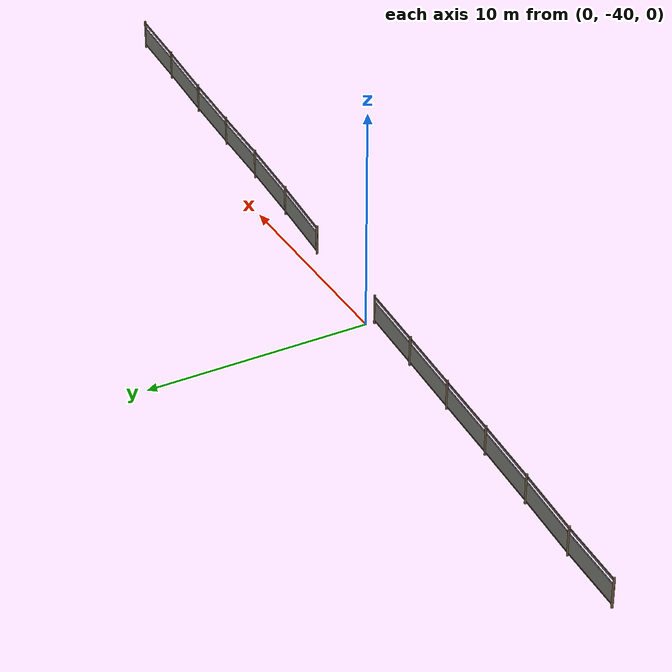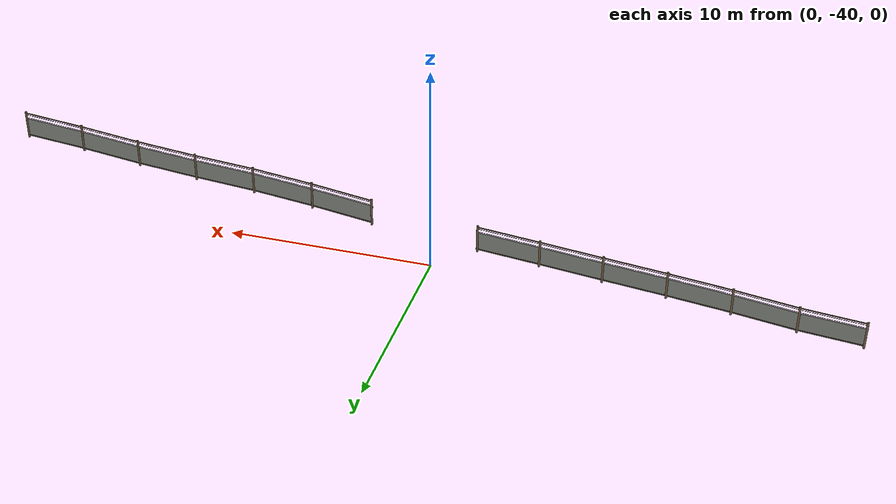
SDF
<sdf version="1.9">
 <world name="orchard_10x41">
  <model name="fence_S">
   <static>true</static>
   <link name="link">
    <visual name="post_1">
     <pose>-19.750 -39.000 0.785 0.0000 0.0000 0.0000</pose>
     <geometry><cylinder><radius>0.0500</radius><length>1.3500</length></cylinder></geometry>
     <material>
      <ambient>0.420 0.340 0.240 1</ambient>
      <diffuse>0.462 0.374 0.264 1</diffuse>
      <specular>0.126 0.102 0.072 1</specular>
     </material>
     <plugin filename="gz-sim-label-system" name="gz::sim::systems::Label"><label>60</label></plugin>
    </visual>
    <visual name="post_2">
     <pose>-16.875 -39.000 1.025 0.0000 0.0000 0.0000</pose>
     <geometry><cylinder><radius>0.0500</radius><length>1.3500</length></cylinder></geometry>
     <material>
      <ambient>0.420 0.340 0.240 1</ambient>
      <diffuse>0.462 0.374 0.264 1</diffuse>
      <specular>0.126 0.102 0.072 1</specular>
     </material>
     <plugin filename="gz-sim-label-system" name="gz::sim::systems::Label"><label>60</label></plugin>
    </visual>
    <visual name="post_3">
     <pose>-14.000 -39.000 1.392 0.0000 0.0000 0.0000</pose>
     <geometry><cylinder><radius>0.0500</radius><length>1.3500</length></cylinder></geometry>
     <material>
      <ambient>0.420 0.340 0.240 1</ambient>
      <diffuse>0.462 0.374 0.264 1</diffuse>
      <specular>0.126 0.102 0.072 1</specular>
     </material>
     <plugin filename="gz-sim-label-system" name="gz::sim::systems::Label"><label>60</label></plugin>
    </visual>
    <visual name="post_4">
     <pose>-11.125 -39.000 1.704 0.0000 0.0000 0.0000</pose>
     <geometry><cylinder><radius>0.0500</radius><length>1.3500</length></cylinder></geometry>
     <material>
      <ambient>0.420 0.340 0.240 1</ambient>
      <diffuse>0.462 0.374 0.264 1</diffuse>
      <specular>0.126 0.102 0.072 1</specular>
     </material>
     <plugin filename="gz-sim-label-system" name="gz::sim::systems::Label"><label>60</label></plugin>
    </visual>
    <visual name="post_5">
     <pose>-8.250 -39.000 1.985 0.0000 0.0000 0.0000</pose>
     <geometry><cylinder><radius>0.0500</radius><length>1.3500</length></cylinder></geometry>
     <material>
      <ambient>0.420 0.340 0.240 1</ambient>
      <diffuse>0.462 0.374 0.264 1</diffuse>
      <specular>0.126 0.102 0.072 1</specular>
     </material>
     <plugin filename="gz-sim-label-system" name="gz::sim::systems::Label"><label>60</label></plugin>
    </visual>
    <visual name="post_6">
     <pose>-5.375 -39.000 2.276 0.0000 0.0000 0.0000</pose>
     <geometry><cylinder><radius>0.0500</radius><length>1.3500</length></cylinder></geometry>
     <material>
      <ambient>0.420 0.340 0.240 1</ambient>
      <diffuse>0.462 0.374 0.264 1</diffuse>
      <specular>0.126 0.102 0.072 1</specular>
     </material>
     <plugin filename="gz-sim-label-system" name="gz::sim::systems::Label"><label>60</label></plugin>
    </visual>
    <visual name="post_7">
     <pose>-2.500 -39.000 2.552 0.0000 0.0000 0.0000</pose>
     <geometry><cylinder><radius>0.0500</radius><length>1.3500</length></cylinder></geometry>
     <material>
      <ambient>0.420 0.340 0.240 1</ambient>
      <diffuse>0.462 0.374 0.264 1</diffuse>
      <specular>0.126 0.102 0.072 1</specular>
     </material>
     <plugin filename="gz-sim-label-system" name="gz::sim::systems::Label"><label>60</label></plugin>
    </visual>
    <visual name="mesh_8">
     <pose>-18.312 -39.000 0.780 0.0000 -0.0836 0.0000</pose>
     <geometry><box><size>2.9325 0.0200 0.9000</size></box></geometry>
     <material>
      <ambient>0.460 0.470 0.440 1</ambient>
      <diffuse>0.506 0.517 0.484 1</diffuse>
      <specular>0.138 0.141 0.132 1</specular>
     </material>
     <plugin filename="gz-sim-label-system" name="gz::sim::systems::Label"><label>60</label></plugin>
    </visual>
    <visual name="rail_9">
     <pose>-18.312 -39.000 0.380 0.0000 -0.0836 0.0000</pose>
     <geometry><box><size>2.9325 0.0350 0.0350</size></box></geometry>
     <material>
      <ambient>0.380 0.310 0.220 1</ambient>
      <diffuse>0.418 0.341 0.242 1</diffuse>
      <specular>0.114 0.093 0.066 1</specular>
     </material>
     <plugin filename="gz-sim-label-system" name="gz::sim::systems::Label"><label>60</label></plugin>
    </visual>
    <visual name="rail_10">
     <pose>-18.312 -39.000 1.510 0.0000 -0.0836 0.0000</pose>
     <geometry><box><size>2.9325 0.0350 0.0350</size></box></geometry>
     <material>
      <ambient>0.380 0.310 0.220 1</ambient>
      <diffuse>0.418 0.341 0.242 1</diffuse>
      <specular>0.114 0.093 0.066 1</specular>
     </material>
     <plugin filename="gz-sim-label-system" name="gz::sim::systems::Label"><label>60</label></plugin>
    </visual>
    <visual name="wire_11">
     <pose>-18.312 -39.000 1.280 0.0000 -0.0836 0.0000</pose>
     <geometry><box><size>2.9325 0.0120 0.0120</size></box></geometry>
     <material>
      <ambient>0.300 0.300 0.320 1</ambient>
      <diffuse>0.330 0.330 0.352 1</diffuse>
      <specular>0.090 0.090 0.096 1</specular>
     </material>
     <plugin filename="gz-sim-label-system" name="gz::sim::systems::Label"><label>60</label></plugin>
    </visual>
    <visual name="wire_12">
     <pose>-18.312 -39.000 1.420 0.0000 -0.0836 0.0000</pose>
     <geometry><box><size>2.9325 0.0120 0.0120</size></box></geometry>
     <material>
      <ambient>0.300 0.300 0.320 1</ambient>
      <diffuse>0.330 0.330 0.352 1</diffuse>
      <specular>0.090 0.090 0.096 1</specular>
     </material>
     <plugin filename="gz-sim-label-system" name="gz::sim::systems::Label"><label>60</label></plugin>
    </visual>
    <visual name="mesh_13">
     <pose>-15.438 -39.000 1.084 0.0000 -0.1268 0.0000</pose>
     <geometry><box><size>2.9325 0.0200 0.9000</size></box></geometry>
     <material>
      <ambient>0.460 0.470 0.440 1</ambient>
      <diffuse>0.506 0.517 0.484 1</diffuse>
      <specular>0.138 0.141 0.132 1</specular>
     </material>
     <plugin filename="gz-sim-label-system" name="gz::sim::systems::Label"><label>60</label></plugin>
    </visual>
    <visual name="rail_14">
     <pose>-15.438 -39.000 0.684 0.0000 -0.1268 0.0000</pose>
     <geometry><box><size>2.9325 0.0350 0.0350</size></box></geometry>
     <material>
      <ambient>0.380 0.310 0.220 1</ambient>
      <diffuse>0.418 0.341 0.242 1</diffuse>
      <specular>0.114 0.093 0.066 1</specular>
     </material>
     <plugin filename="gz-sim-label-system" name="gz::sim::systems::Label"><label>60</label></plugin>
    </visual>
    <visual name="rail_15">
     <pose>-15.438 -39.000 1.814 0.0000 -0.1268 0.0000</pose>
     <geometry><box><size>2.9325 0.0350 0.0350</size></box></geometry>
     <material>
      <ambient>0.380 0.310 0.220 1</ambient>
      <diffuse>0.418 0.341 0.242 1</diffuse>
      <specular>0.114 0.093 0.066 1</specular>
     </material>
     <plugin filename="gz-sim-label-system" name="gz::sim::systems::Label"><label>60</label></plugin>
    </visual>
    <visual name="wire_16">
     <pose>-15.438 -39.000 1.584 0.0000 -0.1268 0.0000</pose>
     <geometry><box><size>2.9325 0.0120 0.0120</size></box></geometry>
     <material>
      <ambient>0.300 0.300 0.320 1</ambient>
      <diffuse>0.330 0.330 0.352 1</diffuse>
      <specular>0.090 0.090 0.096 1</specular>
     </material>
     <plugin filename="gz-sim-label-system" name="gz::sim::systems::Label"><label>60</label></plugin>
    </visual>
    <visual name="wire_17">
     <pose>-15.438 -39.000 1.724 0.0000 -0.1268 0.0000</pose>
     <geometry><box><size>2.9325 0.0120 0.0120</size></box></geometry>
     <material>
      <ambient>0.300 0.300 0.320 1</ambient>
      <diffuse>0.330 0.330 0.352 1</diffuse>
      <specular>0.090 0.090 0.096 1</specular>
     </material>
     <plugin filename="gz-sim-label-system" name="gz::sim::systems::Label"><label>60</label></plugin>
    </visual>
    <visual name="mesh_18">
     <pose>-12.562 -39.000 1.423 0.0000 -0.1083 0.0000</pose>
     <geometry><box><size>2.9325 0.0200 0.9000</size></box></geometry>
     <material>
      <ambient>0.460 0.470 0.440 1</ambient>
      <diffuse>0.506 0.517 0.484 1</diffuse>
      <specular>0.138 0.141 0.132 1</specular>
     </material>
     <plugin filename="gz-sim-label-system" name="gz::sim::systems::Label"><label>60</label></plugin>
    </visual>
    <visual name="rail_19">
     <pose>-12.562 -39.000 1.023 0.0000 -0.1083 0.0000</pose>
     <geometry><box><size>2.9325 0.0350 0.0350</size></box></geometry>
     <material>
      <ambient>0.380 0.310 0.220 1</ambient>
      <diffuse>0.418 0.341 0.242 1</diffuse>
      <specular>0.114 0.093 0.066 1</specular>
     </material>
     <plugin filename="gz-sim-label-system" name="gz::sim::systems::Label"><label>60</label></plugin>
    </visual>
    <visual name="rail_20">
     <pose>-12.562 -39.000 2.153 0.0000 -0.1083 0.0000</pose>
     <geometry><box><size>2.9325 0.0350 0.0350</size></box></geometry>
     <material>
      <ambient>0.380 0.310 0.220 1</ambient>
      <diffuse>0.418 0.341 0.242 1</diffuse>
      <specular>0.114 0.093 0.066 1</specular>
     </material>
     <plugin filename="gz-sim-label-system" name="gz::sim::systems::Label"><label>60</label></plugin>
    </visual>
    <visual name="wire_21">
     <pose>-12.562 -39.000 1.923 0.0000 -0.1083 0.0000</pose>
     <geometry><box><size>2.9325 0.0120 0.0120</size></box></geometry>
     <material>
      <ambient>0.300 0.300 0.320 1</ambient>
      <diffuse>0.330 0.330 0.352 1</diffuse>
      <specular>0.090 0.090 0.096 1</specular>
     </material>
     <plugin filename="gz-sim-label-system" name="gz::sim::systems::Label"><label>60</label></plugin>
    </visual>
    <visual name="wire_22">
     <pose>-12.562 -39.000 2.063 0.0000 -0.1083 0.0000</pose>
     <geometry><box><size>2.9325 0.0120 0.0120</size></box></geometry>
     <material>
      <ambient>0.300 0.300 0.320 1</ambient>
      <diffuse>0.330 0.330 0.352 1</diffuse>
      <specular>0.090 0.090 0.096 1</specular>
     </material>
     <plugin filename="gz-sim-label-system" name="gz::sim::systems::Label"><label>60</label></plugin>
    </visual>
    <visual name="mesh_23">
     <pose>-9.688 -39.000 1.720 0.0000 -0.0972 0.0000</pose>
     <geometry><box><size>2.9325 0.0200 0.9000</size></box></geometry>
     <material>
      <ambient>0.460 0.470 0.440 1</ambient>
      <diffuse>0.506 0.517 0.484 1</diffuse>
      <specular>0.138 0.141 0.132 1</specular>
     </material>
     <plugin filename="gz-sim-label-system" name="gz::sim::systems::Label"><label>60</label></plugin>
    </visual>
    <visual name="rail_24">
     <pose>-9.688 -39.000 1.320 0.0000 -0.0972 0.0000</pose>
     <geometry><box><size>2.9325 0.0350 0.0350</size></box></geometry>
     <material>
      <ambient>0.380 0.310 0.220 1</ambient>
      <diffuse>0.418 0.341 0.242 1</diffuse>
      <specular>0.114 0.093 0.066 1</specular>
     </material>
     <plugin filename="gz-sim-label-system" name="gz::sim::systems::Label"><label>60</label></plugin>
    </visual>
    <visual name="rail_25">
     <pose>-9.688 -39.000 2.450 0.0000 -0.0972 0.0000</pose>
     <geometry><box><size>2.9325 0.0350 0.0350</size></box></geometry>
     <material>
      <ambient>0.380 0.310 0.220 1</ambient>
      <diffuse>0.418 0.341 0.242 1</diffuse>
      <specular>0.114 0.093 0.066 1</specular>
     </material>
     <plugin filename="gz-sim-label-system" name="gz::sim::systems::Label"><label>60</label></plugin>
    </visual>
    <visual name="wire_26">
     <pose>-9.688 -39.000 2.220 0.0000 -0.0972 0.0000</pose>
     <geometry><box><size>2.9325 0.0120 0.0120</size></box></geometry>
     <material>
      <ambient>0.300 0.300 0.320 1</ambient>
      <diffuse>0.330 0.330 0.352 1</diffuse>
      <specular>0.090 0.090 0.096 1</specular>
     </material>
     <plugin filename="gz-sim-label-system" name="gz::sim::systems::Label"><label>60</label></plugin>
    </visual>
    <visual name="wire_27">
     <pose>-9.688 -39.000 2.360 0.0000 -0.0972 0.0000</pose>
     <geometry><box><size>2.9325 0.0120 0.0120</size></box></geometry>
     <material>
      <ambient>0.300 0.300 0.320 1</ambient>
      <diffuse>0.330 0.330 0.352 1</diffuse>
      <specular>0.090 0.090 0.096 1</specular>
     </material>
     <plugin filename="gz-sim-label-system" name="gz::sim::systems::Label"><label>60</label></plugin>
    </visual>
    <visual name="mesh_28">
     <pose>-6.812 -39.000 2.005 0.0000 -0.1009 0.0000</pose>
     <geometry><box><size>2.9325 0.0200 0.9000</size></box></geometry>
     <material>
      <ambient>0.460 0.470 0.440 1</ambient>
      <diffuse>0.506 0.517 0.484 1</diffuse>
      <specular>0.138 0.141 0.132 1</specular>
     </material>
     <plugin filename="gz-sim-label-system" name="gz::sim::systems::Label"><label>60</label></plugin>
    </visual>
    <visual name="rail_29">
     <pose>-6.812 -39.000 1.605 0.0000 -0.1009 0.0000</pose>
     <geometry><box><size>2.9325 0.0350 0.0350</size></box></geometry>
     <material>
      <ambient>0.380 0.310 0.220 1</ambient>
      <diffuse>0.418 0.341 0.242 1</diffuse>
      <specular>0.114 0.093 0.066 1</specular>
     </material>
     <plugin filename="gz-sim-label-system" name="gz::sim::systems::Label"><label>60</label></plugin>
    </visual>
    <visual name="rail_30">
     <pose>-6.812 -39.000 2.735 0.0000 -0.1009 0.0000</pose>
     <geometry><box><size>2.9325 0.0350 0.0350</size></box></geometry>
     <material>
      <ambient>0.380 0.310 0.220 1</ambient>
      <diffuse>0.418 0.341 0.242 1</diffuse>
      <specular>0.114 0.093 0.066 1</specular>
     </material>
     <plugin filename="gz-sim-label-system" name="gz::sim::systems::Label"><label>60</label></plugin>
    </visual>
    <visual name="wire_31">
     <pose>-6.812 -39.000 2.505 0.0000 -0.1009 0.0000</pose>
     <geometry><box><size>2.9325 0.0120 0.0120</size></box></geometry>
     <material>
      <ambient>0.300 0.300 0.320 1</ambient>
      <diffuse>0.330 0.330 0.352 1</diffuse>
      <specular>0.090 0.090 0.096 1</specular>
     </material>
     <plugin filename="gz-sim-label-system" name="gz::sim::systems::Label"><label>60</label></plugin>
    </visual>
    <visual name="wire_32">
     <pose>-6.812 -39.000 2.645 0.0000 -0.1009 0.0000</pose>
     <geometry><box><size>2.9325 0.0120 0.0120</size></box></geometry>
     <material>
      <ambient>0.300 0.300 0.320 1</ambient>
      <diffuse>0.330 0.330 0.352 1</diffuse>
      <specular>0.090 0.090 0.096 1</specular>
     </material>
     <plugin filename="gz-sim-label-system" name="gz::sim::systems::Label"><label>60</label></plugin>
    </visual>
    <visual name="mesh_33">
     <pose>-3.938 -39.000 2.289 0.0000 -0.0957 0.0000</pose>
     <geometry><box><size>2.9325 0.0200 0.9000</size></box></geometry>
     <material>
      <ambient>0.460 0.470 0.440 1</ambient>
      <diffuse>0.506 0.517 0.484 1</diffuse>
      <specular>0.138 0.141 0.132 1</specular>
     </material>
     <plugin filename="gz-sim-label-system" name="gz::sim::systems::Label"><label>60</label></plugin>
    </visual>
    <visual name="rail_34">
     <pose>-3.938 -39.000 1.889 0.0000 -0.0957 0.0000</pose>
     <geometry><box><size>2.9325 0.0350 0.0350</size></box></geometry>
     <material>
      <ambient>0.380 0.310 0.220 1</ambient>
      <diffuse>0.418 0.341 0.242 1</diffuse>
      <specular>0.114 0.093 0.066 1</specular>
     </material>
     <plugin filename="gz-sim-label-system" name="gz::sim::systems::Label"><label>60</label></plugin>
    </visual>
    <visual name="rail_35">
     <pose>-3.938 -39.000 3.019 0.0000 -0.0957 0.0000</pose>
     <geometry><box><size>2.9325 0.0350 0.0350</size></box></geometry>
     <material>
      <ambient>0.380 0.310 0.220 1</ambient>
      <diffuse>0.418 0.341 0.242 1</diffuse>
      <specular>0.114 0.093 0.066 1</specular>
     </material>
     <plugin filename="gz-sim-label-system" name="gz::sim::systems::Label"><label>60</label></plugin>
    </visual>
    <visual name="wire_36">
     <pose>-3.938 -39.000 2.789 0.0000 -0.0957 0.0000</pose>
     <geometry><box><size>2.9325 0.0120 0.0120</size></box></geometry>
     <material>
      <ambient>0.300 0.300 0.320 1</ambient>
      <diffuse>0.330 0.330 0.352 1</diffuse>
      <specular>0.090 0.090 0.096 1</specular>
     </material>
     <plugin filename="gz-sim-label-system" name="gz::sim::systems::Label"><label>60</label></plugin>
    </visual>
    <visual name="wire_37">
     <pose>-3.938 -39.000 2.929 0.0000 -0.0957 0.0000</pose>
     <geometry><box><size>2.9325 0.0120 0.0120</size></box></geometry>
     <material>
      <ambient>0.300 0.300 0.320 1</ambient>
      <diffuse>0.330 0.330 0.352 1</diffuse>
      <specular>0.090 0.090 0.096 1</specular>
     </material>
     <plugin filename="gz-sim-label-system" name="gz::sim::systems::Label"><label>60</label></plugin>
    </visual>
    <collision name="c0">
     <pose>-18.312 -39.000 0.905 0.0000 -0.0836 0.0000</pose>
     <geometry><box><size>2.8750 0.0600 1.3500</size></box></geometry>
    </collision>
    <collision name="c1">
     <pose>-15.438 -39.000 1.209 0.0000 -0.1268 0.0000</pose>
     <geometry><box><size>2.8750 0.0600 1.3500</size></box></geometry>
    </collision>
    <collision name="c2">
     <pose>-12.562 -39.000 1.548 0.0000 -0.1083 0.0000</pose>
     <geometry><box><size>2.8750 0.0600 1.3500</size></box></geometry>
    </collision>
    <collision name="c3">
     <pose>-9.688 -39.000 1.845 0.0000 -0.0972 0.0000</pose>
     <geometry><box><size>2.8750 0.0600 1.3500</size></box></geometry>
    </collision>
    <collision name="c4">
     <pose>-6.812 -39.000 2.130 0.0000 -0.1009 0.0000</pose>
     <geometry><box><size>2.8750 0.0600 1.3500</size></box></geometry>
    </collision>
    <collision name="c5">
     <pose>-3.938 -39.000 2.414 0.0000 -0.0957 0.0000</pose>
     <geometry><box><size>2.8750 0.0600 1.3500</size></box></geometry>
    </collision>
   </link>
  </model>
  <model name="fence_S2">
   <static>true</static>
   <link name="link">
    <visual name="post_1">
     <pose>2.500 -39.000 3.085 0.0000 0.0000 0.0000</pose>
     <geometry><cylinder><radius>0.0500</radius><length>1.3500</length></cylinder></geometry>
     <material>
      <ambient>0.420 0.340 0.240 1</ambient>
      <diffuse>0.462 0.374 0.264 1</diffuse>
      <specular>0.126 0.102 0.072 1</specular>
     </material>
     <plugin filename="gz-sim-label-system" name="gz::sim::systems::Label"><label>60</label></plugin>
    </visual>
    <visual name="post_2">
     <pose>5.375 -39.000 3.488 0.0000 0.0000 0.0000</pose>
     <geometry><cylinder><radius>0.0500</radius><length>1.3500</length></cylinder></geometry>
     <material>
      <ambient>0.420 0.340 0.240 1</ambient>
      <diffuse>0.462 0.374 0.264 1</diffuse>
      <specular>0.126 0.102 0.072 1</specular>
     </material>
     <plugin filename="gz-sim-label-system" name="gz::sim::systems::Label"><label>60</label></plugin>
    </visual>
    <visual name="post_3">
     <pose>8.250 -39.000 3.816 0.0000 0.0000 0.0000</pose>
     <geometry><cylinder><radius>0.0500</radius><length>1.3500</length></cylinder></geometry>
     <material>
      <ambient>0.420 0.340 0.240 1</ambient>
      <diffuse>0.462 0.374 0.264 1</diffuse>
      <specular>0.126 0.102 0.072 1</specular>
     </material>
     <plugin filename="gz-sim-label-system" name="gz::sim::systems::Label"><label>60</label></plugin>
    </visual>
    <visual name="post_4">
     <pose>11.125 -39.000 4.047 0.0000 0.0000 0.0000</pose>
     <geometry><cylinder><radius>0.0500</radius><length>1.3500</length></cylinder></geometry>
     <material>
      <ambient>0.420 0.340 0.240 1</ambient>
      <diffuse>0.462 0.374 0.264 1</diffuse>
      <specular>0.126 0.102 0.072 1</specular>
     </material>
     <plugin filename="gz-sim-label-system" name="gz::sim::systems::Label"><label>60</label></plugin>
    </visual>
    <visual name="post_5">
     <pose>14.000 -39.000 4.327 0.0000 0.0000 0.0000</pose>
     <geometry><cylinder><radius>0.0500</radius><length>1.3500</length></cylinder></geometry>
     <material>
      <ambient>0.420 0.340 0.240 1</ambient>
      <diffuse>0.462 0.374 0.264 1</diffuse>
      <specular>0.126 0.102 0.072 1</specular>
     </material>
     <plugin filename="gz-sim-label-system" name="gz::sim::systems::Label"><label>60</label></plugin>
    </visual>
    <visual name="post_6">
     <pose>16.875 -39.000 4.683 0.0000 0.0000 0.0000</pose>
     <geometry><cylinder><radius>0.0500</radius><length>1.3500</length></cylinder></geometry>
     <material>
      <ambient>0.420 0.340 0.240 1</ambient>
      <diffuse>0.462 0.374 0.264 1</diffuse>
      <specular>0.126 0.102 0.072 1</specular>
     </material>
     <plugin filename="gz-sim-label-system" name="gz::sim::systems::Label"><label>60</label></plugin>
    </visual>
    <visual name="post_7">
     <pose>19.750 -39.000 4.973 0.0000 0.0000 0.0000</pose>
     <geometry><cylinder><radius>0.0500</radius><length>1.3500</length></cylinder></geometry>
     <material>
      <ambient>0.420 0.340 0.240 1</ambient>
      <diffuse>0.462 0.374 0.264 1</diffuse>
      <specular>0.126 0.102 0.072 1</specular>
     </material>
     <plugin filename="gz-sim-label-system" name="gz::sim::systems::Label"><label>60</label></plugin>
    </visual>
    <visual name="mesh_8">
     <pose>3.938 -39.000 3.162 0.0000 -0.1393 0.0000</pose>
     <geometry><box><size>2.9325 0.0200 0.9000</size></box></geometry>
     <material>
      <ambient>0.460 0.470 0.440 1</ambient>
      <diffuse>0.506 0.517 0.484 1</diffuse>
      <specular>0.138 0.141 0.132 1</specular>
     </material>
     <plugin filename="gz-sim-label-system" name="gz::sim::systems::Label"><label>60</label></plugin>
    </visual>
    <visual name="rail_9">
     <pose>3.938 -39.000 2.762 0.0000 -0.1393 0.0000</pose>
     <geometry><box><size>2.9325 0.0350 0.0350</size></box></geometry>
     <material>
      <ambient>0.380 0.310 0.220 1</ambient>
      <diffuse>0.418 0.341 0.242 1</diffuse>
      <specular>0.114 0.093 0.066 1</specular>
     </material>
     <plugin filename="gz-sim-label-system" name="gz::sim::systems::Label"><label>60</label></plugin>
    </visual>
    <visual name="rail_10">
     <pose>3.938 -39.000 3.892 0.0000 -0.1393 0.0000</pose>
     <geometry><box><size>2.9325 0.0350 0.0350</size></box></geometry>
     <material>
      <ambient>0.380 0.310 0.220 1</ambient>
      <diffuse>0.418 0.341 0.242 1</diffuse>
      <specular>0.114 0.093 0.066 1</specular>
     </material>
     <plugin filename="gz-sim-label-system" name="gz::sim::systems::Label"><label>60</label></plugin>
    </visual>
    <visual name="wire_11">
     <pose>3.938 -39.000 3.662 0.0000 -0.1393 0.0000</pose>
     <geometry><box><size>2.9325 0.0120 0.0120</size></box></geometry>
     <material>
      <ambient>0.300 0.300 0.320 1</ambient>
      <diffuse>0.330 0.330 0.352 1</diffuse>
      <specular>0.090 0.090 0.096 1</specular>
     </material>
     <plugin filename="gz-sim-label-system" name="gz::sim::systems::Label"><label>60</label></plugin>
    </visual>
    <visual name="wire_12">
     <pose>3.938 -39.000 3.802 0.0000 -0.1393 0.0000</pose>
     <geometry><box><size>2.9325 0.0120 0.0120</size></box></geometry>
     <material>
      <ambient>0.300 0.300 0.320 1</ambient>
      <diffuse>0.330 0.330 0.352 1</diffuse>
      <specular>0.090 0.090 0.096 1</specular>
     </material>
     <plugin filename="gz-sim-label-system" name="gz::sim::systems::Label"><label>60</label></plugin>
    </visual>
    <visual name="mesh_13">
     <pose>6.812 -39.000 3.527 0.0000 -0.1134 0.0000</pose>
     <geometry><box><size>2.9325 0.0200 0.9000</size></box></geometry>
     <material>
      <ambient>0.460 0.470 0.440 1</ambient>
      <diffuse>0.506 0.517 0.484 1</diffuse>
      <specular>0.138 0.141 0.132 1</specular>
     </material>
     <plugin filename="gz-sim-label-system" name="gz::sim::systems::Label"><label>60</label></plugin>
    </visual>
    <visual name="rail_14">
     <pose>6.812 -39.000 3.127 0.0000 -0.1134 0.0000</pose>
     <geometry><box><size>2.9325 0.0350 0.0350</size></box></geometry>
     <material>
      <ambient>0.380 0.310 0.220 1</ambient>
      <diffuse>0.418 0.341 0.242 1</diffuse>
      <specular>0.114 0.093 0.066 1</specular>
     </material>
     <plugin filename="gz-sim-label-system" name="gz::sim::systems::Label"><label>60</label></plugin>
    </visual>
    <visual name="rail_15">
     <pose>6.812 -39.000 4.257 0.0000 -0.1134 0.0000</pose>
     <geometry><box><size>2.9325 0.0350 0.0350</size></box></geometry>
     <material>
      <ambient>0.380 0.310 0.220 1</ambient>
      <diffuse>0.418 0.341 0.242 1</diffuse>
      <specular>0.114 0.093 0.066 1</specular>
     </material>
     <plugin filename="gz-sim-label-system" name="gz::sim::systems::Label"><label>60</label></plugin>
    </visual>
    <visual name="wire_16">
     <pose>6.812 -39.000 4.027 0.0000 -0.1134 0.0000</pose>
     <geometry><box><size>2.9325 0.0120 0.0120</size></box></geometry>
     <material>
      <ambient>0.300 0.300 0.320 1</ambient>
      <diffuse>0.330 0.330 0.352 1</diffuse>
      <specular>0.090 0.090 0.096 1</specular>
     </material>
     <plugin filename="gz-sim-label-system" name="gz::sim::systems::Label"><label>60</label></plugin>
    </visual>
    <visual name="wire_17">
     <pose>6.812 -39.000 4.167 0.0000 -0.1134 0.0000</pose>
     <geometry><box><size>2.9325 0.0120 0.0120</size></box></geometry>
     <material>
      <ambient>0.300 0.300 0.320 1</ambient>
      <diffuse>0.330 0.330 0.352 1</diffuse>
      <specular>0.090 0.090 0.096 1</specular>
     </material>
     <plugin filename="gz-sim-label-system" name="gz::sim::systems::Label"><label>60</label></plugin>
    </visual>
    <visual name="mesh_18">
     <pose>9.688 -39.000 3.807 0.0000 -0.0804 0.0000</pose>
     <geometry><box><size>2.9325 0.0200 0.9000</size></box></geometry>
     <material>
      <ambient>0.460 0.470 0.440 1</ambient>
      <diffuse>0.506 0.517 0.484 1</diffuse>
      <specular>0.138 0.141 0.132 1</specular>
     </material>
     <plugin filename="gz-sim-label-system" name="gz::sim::systems::Label"><label>60</label></plugin>
    </visual>
    <visual name="rail_19">
     <pose>9.688 -39.000 3.407 0.0000 -0.0804 0.0000</pose>
     <geometry><box><size>2.9325 0.0350 0.0350</size></box></geometry>
     <material>
      <ambient>0.380 0.310 0.220 1</ambient>
      <diffuse>0.418 0.341 0.242 1</diffuse>
      <specular>0.114 0.093 0.066 1</specular>
     </material>
     <plugin filename="gz-sim-label-system" name="gz::sim::systems::Label"><label>60</label></plugin>
    </visual>
    <visual name="rail_20">
     <pose>9.688 -39.000 4.537 0.0000 -0.0804 0.0000</pose>
     <geometry><box><size>2.9325 0.0350 0.0350</size></box></geometry>
     <material>
      <ambient>0.380 0.310 0.220 1</ambient>
      <diffuse>0.418 0.341 0.242 1</diffuse>
      <specular>0.114 0.093 0.066 1</specular>
     </material>
     <plugin filename="gz-sim-label-system" name="gz::sim::systems::Label"><label>60</label></plugin>
    </visual>
    <visual name="wire_21">
     <pose>9.688 -39.000 4.307 0.0000 -0.0804 0.0000</pose>
     <geometry><box><size>2.9325 0.0120 0.0120</size></box></geometry>
     <material>
      <ambient>0.300 0.300 0.320 1</ambient>
      <diffuse>0.330 0.330 0.352 1</diffuse>
      <specular>0.090 0.090 0.096 1</specular>
     </material>
     <plugin filename="gz-sim-label-system" name="gz::sim::systems::Label"><label>60</label></plugin>
    </visual>
    <visual name="wire_22">
     <pose>9.688 -39.000 4.447 0.0000 -0.0804 0.0000</pose>
     <geometry><box><size>2.9325 0.0120 0.0120</size></box></geometry>
     <material>
      <ambient>0.300 0.300 0.320 1</ambient>
      <diffuse>0.330 0.330 0.352 1</diffuse>
      <specular>0.090 0.090 0.096 1</specular>
     </material>
     <plugin filename="gz-sim-label-system" name="gz::sim::systems::Label"><label>60</label></plugin>
    </visual>
    <visual name="mesh_23">
     <pose>12.562 -39.000 4.062 0.0000 -0.0970 0.0000</pose>
     <geometry><box><size>2.9325 0.0200 0.9000</size></box></geometry>
     <material>
      <ambient>0.460 0.470 0.440 1</ambient>
      <diffuse>0.506 0.517 0.484 1</diffuse>
      <specular>0.138 0.141 0.132 1</specular>
     </material>
     <plugin filename="gz-sim-label-system" name="gz::sim::systems::Label"><label>60</label></plugin>
    </visual>
    <visual name="rail_24">
     <pose>12.562 -39.000 3.662 0.0000 -0.0970 0.0000</pose>
     <geometry><box><size>2.9325 0.0350 0.0350</size></box></geometry>
     <material>
      <ambient>0.380 0.310 0.220 1</ambient>
      <diffuse>0.418 0.341 0.242 1</diffuse>
      <specular>0.114 0.093 0.066 1</specular>
     </material>
     <plugin filename="gz-sim-label-system" name="gz::sim::systems::Label"><label>60</label></plugin>
    </visual>
    <visual name="rail_25">
     <pose>12.562 -39.000 4.792 0.0000 -0.0970 0.0000</pose>
     <geometry><box><size>2.9325 0.0350 0.0350</size></box></geometry>
     <material>
      <ambient>0.380 0.310 0.220 1</ambient>
      <diffuse>0.418 0.341 0.242 1</diffuse>
      <specular>0.114 0.093 0.066 1</specular>
     </material>
     <plugin filename="gz-sim-label-system" name="gz::sim::systems::Label"><label>60</label></plugin>
    </visual>
    <visual name="wire_26">
     <pose>12.562 -39.000 4.562 0.0000 -0.0970 0.0000</pose>
     <geometry><box><size>2.9325 0.0120 0.0120</size></box></geometry>
     <material>
      <ambient>0.300 0.300 0.320 1</ambient>
      <diffuse>0.330 0.330 0.352 1</diffuse>
      <specular>0.090 0.090 0.096 1</specular>
     </material>
     <plugin filename="gz-sim-label-system" name="gz::sim::systems::Label"><label>60</label></plugin>
    </visual>
    <visual name="wire_27">
     <pose>12.562 -39.000 4.702 0.0000 -0.0970 0.0000</pose>
     <geometry><box><size>2.9325 0.0120 0.0120</size></box></geometry>
     <material>
      <ambient>0.300 0.300 0.320 1</ambient>
      <diffuse>0.330 0.330 0.352 1</diffuse>
      <specular>0.090 0.090 0.096 1</specular>
     </material>
     <plugin filename="gz-sim-label-system" name="gz::sim::systems::Label"><label>60</label></plugin>
    </visual>
    <visual name="mesh_28">
     <pose>15.438 -39.000 4.380 0.0000 -0.1231 0.0000</pose>
     <geometry><box><size>2.9325 0.0200 0.9000</size></box></geometry>
     <material>
      <ambient>0.460 0.470 0.440 1</ambient>
      <diffuse>0.506 0.517 0.484 1</diffuse>
      <specular>0.138 0.141 0.132 1</specular>
     </material>
     <plugin filename="gz-sim-label-system" name="gz::sim::systems::Label"><label>60</label></plugin>
    </visual>
    <visual name="rail_29">
     <pose>15.438 -39.000 3.980 0.0000 -0.1231 0.0000</pose>
     <geometry><box><size>2.9325 0.0350 0.0350</size></box></geometry>
     <material>
      <ambient>0.380 0.310 0.220 1</ambient>
      <diffuse>0.418 0.341 0.242 1</diffuse>
      <specular>0.114 0.093 0.066 1</specular>
     </material>
     <plugin filename="gz-sim-label-system" name="gz::sim::systems::Label"><label>60</label></plugin>
    </visual>
    <visual name="rail_30">
     <pose>15.438 -39.000 5.110 0.0000 -0.1231 0.0000</pose>
     <geometry><box><size>2.9325 0.0350 0.0350</size></box></geometry>
     <material>
      <ambient>0.380 0.310 0.220 1</ambient>
      <diffuse>0.418 0.341 0.242 1</diffuse>
      <specular>0.114 0.093 0.066 1</specular>
     </material>
     <plugin filename="gz-sim-label-system" name="gz::sim::systems::Label"><label>60</label></plugin>
    </visual>
    <visual name="wire_31">
     <pose>15.438 -39.000 4.880 0.0000 -0.1231 0.0000</pose>
     <geometry><box><size>2.9325 0.0120 0.0120</size></box></geometry>
     <material>
      <ambient>0.300 0.300 0.320 1</ambient>
      <diffuse>0.330 0.330 0.352 1</diffuse>
      <specular>0.090 0.090 0.096 1</specular>
     </material>
     <plugin filename="gz-sim-label-system" name="gz::sim::systems::Label"><label>60</label></plugin>
    </visual>
    <visual name="wire_32">
     <pose>15.438 -39.000 5.020 0.0000 -0.1231 0.0000</pose>
     <geometry><box><size>2.9325 0.0120 0.0120</size></box></geometry>
     <material>
      <ambient>0.300 0.300 0.320 1</ambient>
      <diffuse>0.330 0.330 0.352 1</diffuse>
      <specular>0.090 0.090 0.096 1</specular>
     </material>
     <plugin filename="gz-sim-label-system" name="gz::sim::systems::Label"><label>60</label></plugin>
    </visual>
    <visual name="mesh_33">
     <pose>18.312 -39.000 4.703 0.0000 -0.1006 0.0000</pose>
     <geometry><box><size>2.9325 0.0200 0.9000</size></box></geometry>
     <material>
      <ambient>0.460 0.470 0.440 1</ambient>
      <diffuse>0.506 0.517 0.484 1</diffuse>
      <specular>0.138 0.141 0.132 1</specular>
     </material>
     <plugin filename="gz-sim-label-system" name="gz::sim::systems::Label"><label>60</label></plugin>
    </visual>
    <visual name="rail_34">
     <pose>18.312 -39.000 4.303 0.0000 -0.1006 0.0000</pose>
     <geometry><box><size>2.9325 0.0350 0.0350</size></box></geometry>
     <material>
      <ambient>0.380 0.310 0.220 1</ambient>
      <diffuse>0.418 0.341 0.242 1</diffuse>
      <specular>0.114 0.093 0.066 1</specular>
     </material>
     <plugin filename="gz-sim-label-system" name="gz::sim::systems::Label"><label>60</label></plugin>
    </visual>
    <visual name="rail_35">
     <pose>18.312 -39.000 5.433 0.0000 -0.1006 0.0000</pose>
     <geometry><box><size>2.9325 0.0350 0.0350</size></box></geometry>
     <material>
      <ambient>0.380 0.310 0.220 1</ambient>
      <diffuse>0.418 0.341 0.242 1</diffuse>
      <specular>0.114 0.093 0.066 1</specular>
     </material>
     <plugin filename="gz-sim-label-system" name="gz::sim::systems::Label"><label>60</label></plugin>
    </visual>
    <visual name="wire_36">
     <pose>18.312 -39.000 5.203 0.0000 -0.1006 0.0000</pose>
     <geometry><box><size>2.9325 0.0120 0.0120</size></box></geometry>
     <material>
      <ambient>0.300 0.300 0.320 1</ambient>
      <diffuse>0.330 0.330 0.352 1</diffuse>
      <specular>0.090 0.090 0.096 1</specular>
     </material>
     <plugin filename="gz-sim-label-system" name="gz::sim::systems::Label"><label>60</label></plugin>
    </visual>
    <visual name="wire_37">
     <pose>18.312 -39.000 5.343 0.0000 -0.1006 0.0000</pose>
     <geometry><box><size>2.9325 0.0120 0.0120</size></box></geometry>
     <material>
      <ambient>0.300 0.300 0.320 1</ambient>
      <diffuse>0.330 0.330 0.352 1</diffuse>
      <specular>0.090 0.090 0.096 1</specular>
     </material>
     <plugin filename="gz-sim-label-system" name="gz::sim::systems::Label"><label>60</label></plugin>
    </visual>
    <collision name="c0">
     <pose>3.938 -39.000 3.287 0.0000 -0.1393 0.0000</pose>
     <geometry><box><size>2.8750 0.0600 1.3500</size></box></geometry>
    </collision>
    <collision name="c1">
     <pose>6.812 -39.000 3.652 0.0000 -0.1134 0.0000</pose>
     <geometry><box><size>2.8750 0.0600 1.3500</size></box></geometry>
    </collision>
    <collision name="c2">
     <pose>9.688 -39.000 3.932 0.0000 -0.0804 0.0000</pose>
     <geometry><box><size>2.8750 0.0600 1.3500</size></box></geometry>
    </collision>
    <collision name="c3">
     <pose>12.562 -39.000 4.187 0.0000 -0.0970 0.0000</pose>
     <geometry><box><size>2.8750 0.0600 1.3500</size></box></geometry>
    </collision>
    <collision name="c4">
     <pose>15.438 -39.000 4.505 0.0000 -0.1231 0.0000</pose>
     <geometry><box><size>2.8750 0.0600 1.3500</size></box></geometry>
    </collision>
    <collision name="c5">
     <pose>18.312 -39.000 4.828 0.0000 -0.1006 0.0000</pose>
     <geometry><box><size>2.8750 0.0600 1.3500</size></box></geometry>
    </collision>
   </link>
  </model>
 </world>
</sdf>
